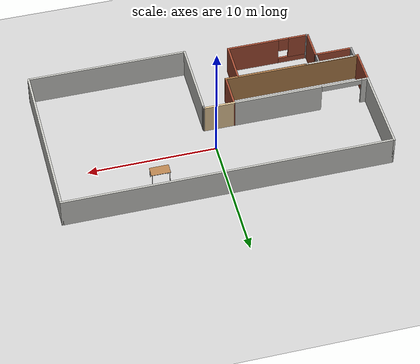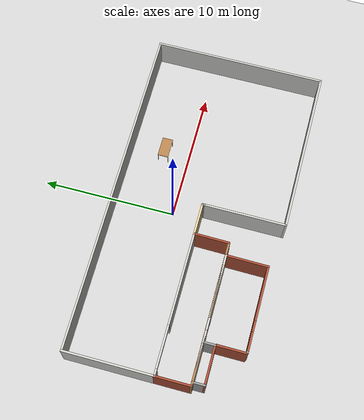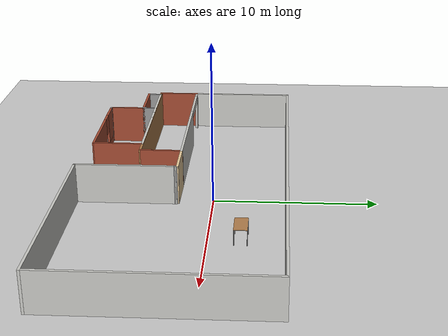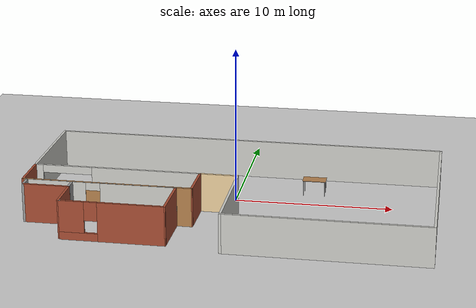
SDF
<sdf version="1.7">
 <world name="default">
  <light name="sun" type="directional">
   <pose>0 0 10 0 -0 0</pose>
   <diffuse>0.8 0.8 0.8 1</diffuse>
   <specular>0.2 0.2 0.2 1</specular>
   <attenuation>
    <range>1000</range>
    <constant>0.9</constant>
    <linear>0.01</linear>
    <quadratic>0.001</quadratic>
   </attenuation>
   <direction>-0.5 0.1 -0.9</direction>
   <spot><inner_angle>0</inner_angle><outer_angle>0</outer_angle><falloff>0</falloff></spot>
  </light>
  <model name="ground_plane">
   <static>1</static>
   <link name="link">
    <collision name="collision">
     <geometry><plane><normal>0 0 1</normal><size>100 100</size></plane></geometry>
     <surface>
      <contact><collide_bitmask>65535</collide_bitmask></contact>
      <friction><ode><mu>100</mu><mu2>50</mu2></ode></friction>
     </surface>
    </collision>
    <visual name="visual">
     <cast_shadows>0</cast_shadows>
     <geometry><plane><normal>0 0 1</normal><size>100 100</size></plane></geometry>
     <material>
      <script><uri>file://media/materials/scripts/gazebo.material</uri><name>Gazebo/Grey</name></script>
     </material>
    </visual>
   </link>
  </model>
  <gravity>0 0 -9.8</gravity>
  <magnetic_field>6e-06 2.3e-05 -4.2e-05</magnetic_field>
  <atmosphere type="adiabatic"/>
  <physics type="ode">
   <max_step_size>0.001</max_step_size>
   <real_time_factor>1</real_time_factor>
   <real_time_update_rate>1000</real_time_update_rate>
  </physics>
  <scene><ambient>0.4 0.4 0.4 1</ambient><background>0.7 0.7 0.7 1</background><shadows>1</shadows></scene>
  <spherical_coordinates>
   <surface_model>EARTH_WGS84</surface_model>
   <latitude_deg>0</latitude_deg>
   <longitude_deg>0</longitude_deg>
   <elevation>0</elevation>
   <heading_deg>0</heading_deg>
  </spherical_coordinates>
  <model name="Simple_place">
   <pose>0.126309 -1.9234 0 0 -0 0</pose>
   <link name="Wall_0">
    <collision name="Wall_0_Collision">
     <geometry><box><size>7.02936 0.15 2.5</size></box></geometry>
     <pose>0 0 1.25 0 -0 0</pose>
    </collision>
    <visual name="Wall_0_Visual">
     <pose>0 0 1.25 0 -0 0</pose>
     <geometry><box><size>7.02936 0.15 2.5</size></box></geometry>
     <material>
      <script><uri>file://media/materials/scripts/gazebo.material</uri><name>Gazebo/CeilingTiled</name></script>
      <ambient>0.921569 0.807843 0.615686 1</ambient>
     </material>
     <meta><layer>0</layer></meta>
    </visual>
    <pose>-5.48532 -0.178442 0 0 -0 -0.001001</pose>
   </link>
   <link name="Wall_1">
    <collision name="Wall_1_Collision">
     <geometry><box><size>2.74328 0.15 2.5</size></box></geometry>
     <pose>0 0 1.25 0 -0 0</pose>
    </collision>
    <visual name="Wall_1_Visual">
     <pose>0 0 1.25 0 -0 0</pose>
     <geometry><box><size>2.74328 0.15 2.5</size></box></geometry>
     <material>
      <script><uri>file://media/materials/scripts/gazebo.material</uri><name>Gazebo/Bricks</name></script>
      <ambient>1 1 1 1</ambient>
     </material>
     <meta><layer>0</layer></meta>
    </visual>
    <pose>-2.06032 -1.47844 0 0 -0 -1.58212</pose>
   </link>
   <link name="Wall_10">
    <collision name="Wall_10_Collision">
     <geometry><box><size>3.26527 0.15 2.5</size></box></geometry>
     <pose>0 0 1.25 0 -0 0</pose>
    </collision>
    <visual name="Wall_10_Visual">
     <pose>0 0 1.25 0 -0 0</pose>
     <geometry><box><size>3.26527 0.15 2.5</size></box></geometry>
     <material>
      <script><uri>file://media/materials/scripts/gazebo.material</uri><name>Gazebo/Bricks</name></script>
      <ambient>1 1 1 1</ambient>
     </material>
     <meta><layer>0</layer></meta>
    </visual>
    <pose>-3.06012 -4.35256 0 0 -0 -1.58051</pose>
   </link>
   <link name="Wall_11">
    <pose>-6.25025 -5.91012 0 0 -0 3.14159</pose>
    <visual name="Wall_11_Visual_0">
     <pose>-1.17761 0 1.25 0 -0 0</pose>
     <geometry><box><size>4.14478 0.15 2.5</size></box></geometry>
     <material>
      <script><uri>file://media/materials/scripts/gazebo.material</uri><name>Gazebo/Bricks</name></script>
      <ambient>0.760784 0.662745 0.627451 1</ambient>
     </material>
     <meta><layer>0</layer></meta>
    </visual>
    <collision name="Wall_11_Collision_0">
     <geometry><box><size>4.14478 0.15 2.5</size></box></geometry>
     <pose>-1.17761 0 1.25 0 -0 0</pose>
    </collision>
    <visual name="Wall_11_Visual_1">
     <pose>2.07239 0 0.25 0 -0 0</pose>
     <geometry><box><size>2.35521 0.15 0.5</size></box></geometry>
     <material>
      <script><uri>file://media/materials/scripts/gazebo.material</uri><name>Gazebo/Bricks</name></script>
      <ambient>0.760784 0.662745 0.627451 1</ambient>
     </material>
     <meta><layer>0</layer></meta>
    </visual>
    <collision name="Wall_11_Collision_1">
     <geometry><box><size>2.35521 0.15 0.5</size></box></geometry>
     <pose>2.07239 0 0.25 0 -0 0</pose>
    </collision>
    <visual name="Wall_11_Visual_2">
     <pose>2.47239 0 1.5 0 -0 0</pose>
     <geometry><box><size>1.55522 0.15 2</size></box></geometry>
     <material>
      <script><uri>file://media/materials/scripts/gazebo.material</uri><name>Gazebo/Bricks</name></script>
      <ambient>0.760784 0.662745 0.627451 1</ambient>
     </material>
     <meta><layer>0</layer></meta>
    </visual>
    <collision name="Wall_11_Collision_2">
     <geometry><box><size>1.55522 0.15 2</size></box></geometry>
     <pose>2.47239 0 1.5 0 -0 0</pose>
    </collision>
    <visual name="Wall_11_Visual_3">
     <pose>1.29479 0 1.9 0 -0 0</pose>
     <geometry><box><size>0.8 0.15 1.2</size></box></geometry>
     <material>
      <script><uri>file://media/materials/scripts/gazebo.material</uri><name>Gazebo/Bricks</name></script>
      <ambient>0.760784 0.662745 0.627451 1</ambient>
     </material>
     <meta><layer>0</layer></meta>
    </visual>
    <collision name="Wall_11_Collision_3">
     <geometry><box><size>0.8 0.15 1.2</size></box></geometry>
     <pose>1.29479 0 1.9 0 -0 0</pose>
    </collision>
   </link>
   <link name="Wall_12">
    <collision name="Wall_12_Collision">
     <geometry><box><size>0.15 0.15 2.5</size></box></geometry>
     <pose>0 0 1.25 0 -0 0</pose>
    </collision>
    <visual name="Wall_12_Visual">
     <pose>0 0 1.25 0 -0 0</pose>
     <geometry><box><size>0.15 0.15 2.5</size></box></geometry>
     <material>
      <script><uri>file://media/materials/scripts/gazebo.material</uri><name>Gazebo/Grey</name></script>
      <ambient>1 1 1 1</ambient>
     </material>
     <meta><layer>0</layer></meta>
    </visual>
    <pose>-9.42525 -5.90256 0 0 -0 0</pose>
   </link>
   <link name="Wall_14">
    <collision name="Wall_14_Collision">
     <geometry><box><size>2.24245 0.15 2.5</size></box></geometry>
     <pose>0 0 1.25 0 -0 0</pose>
    </collision>
    <visual name="Wall_14_Visual">
     <pose>0 0 1.25 0 -0 0</pose>
     <geometry><box><size>2.24245 0.15 2.5</size></box></geometry>
     <material>
      <script><uri>file://media/materials/scripts/gazebo.material</uri><name>Gazebo/Bricks</name></script>
      <ambient>1 1 1 1</ambient>
     </material>
     <meta><layer>0</layer></meta>
    </visual>
    <pose>-9.51765 -4.80524 0 0 -0 1.56718</pose>
   </link>
   <link name="Wall_16">
    <collision name="Wall_16_Collision">
     <geometry><box><size>6.75 0.15 2.5</size></box></geometry>
     <pose>0 0 1.25 0 -0 0</pose>
    </collision>
    <visual name="Wall_16_Visual">
     <pose>0 0 1.25 0 -0 0</pose>
     <geometry><box><size>6.75 0.15 2.5</size></box></geometry>
     <material>
      <script><uri>file://media/materials/scripts/gazebo.material</uri><name>Gazebo/CeilingTiled</name></script>
      <ambient>0.921569 0.807843 0.615686 1</ambient>
     </material>
     <meta><layer>0</layer></meta>
    </visual>
    <pose>-12.675 3.125 0 0 -0 1.5708</pose>
   </link>
   <link name="Wall_17">
    <collision name="Wall_17_Collision">
     <geometry><box><size>25.5 0.15 2.5</size></box></geometry>
     <pose>0 0 1.25 0 -0 0</pose>
    </collision>
    <visual name="Wall_17_Visual">
     <pose>0 0 1.25 0 -0 0</pose>
     <geometry><box><size>25.5 0.15 2.5</size></box></geometry>
     <material>
      <script><uri>file://media/materials/scripts/gazebo.material</uri><name>Gazebo/CeilingTiled</name></script>
      <ambient>0.921569 0.807843 0.615686 1</ambient>
     </material>
     <meta><layer>0</layer></meta>
    </visual>
    <pose>-0 6.425 0 0 -0 0</pose>
   </link>
   <link name="Wall_18">
    <collision name="Wall_18_Collision">
     <geometry><box><size>13 0.15 2.5</size></box></geometry>
     <pose>0 0 1.25 0 -0 0</pose>
    </collision>
    <visual name="Wall_18_Visual">
     <pose>0 0 1.25 0 -0 0</pose>
     <geometry><box><size>13 0.15 2.5</size></box></geometry>
     <material>
      <script><uri>file://media/materials/scripts/gazebo.material</uri><name>Gazebo/CeilingTiled</name></script>
      <ambient>0.921569 0.807843 0.615686 1</ambient>
     </material>
     <meta><layer>0</layer></meta>
    </visual>
    <pose>12.675 0 0 0 -0 -1.5708</pose>
   </link>
   <link name="Wall_19">
    <collision name="Wall_19_Collision">
     <geometry><box><size>12.5 0.15 2.5</size></box></geometry>
     <pose>0 0 1.25 0 -0 0</pose>
    </collision>
    <visual name="Wall_19_Visual">
     <pose>0 0 1.25 0 -0 0</pose>
     <geometry><box><size>12.5 0.15 2.5</size></box></geometry>
     <material>
      <script><uri>file://media/materials/scripts/gazebo.material</uri><name>Gazebo/CeilingTiled</name></script>
      <ambient>0.921569 0.807843 0.615686 1</ambient>
     </material>
     <meta><layer>0</layer></meta>
    </visual>
    <pose>6.5 -6.425 0 0 -0 3.14159</pose>
   </link>
   <link name="Wall_2">
    <collision name="Wall_2_Collision">
     <geometry><box><size>10.75 0.15 2.5</size></box></geometry>
     <pose>0 0 1.25 0 -0 0</pose>
    </collision>
    <visual name="Wall_2_Visual">
     <pose>0 0 1.25 0 -0 0</pose>
     <geometry><box><size>10.75 0.15 2.5</size></box></geometry>
     <material>
      <script><uri>file://media/materials/scripts/gazebo.material</uri><name>Gazebo/Wood</name></script>
      <ambient>1 1 1 1</ambient>
     </material>
     <meta><layer>0</layer></meta>
    </visual>
    <pose>-7.375 -2.775 0 0 -0 3.14159</pose>
   </link>
   <link name="Wall_20">
    <collision name="Wall_20_Collision">
     <geometry><box><size>6.25 0.15 2.5</size></box></geometry>
     <pose>0 0 1.25 0 -0 0</pose>
    </collision>
    <visual name="Wall_20_Visual">
     <pose>0 0 1.25 0 -0 0</pose>
     <geometry><box><size>6.25 0.15 2.5</size></box></geometry>
     <material>
      <script><uri>file://media/materials/scripts/gazebo.material</uri><name>Gazebo/CeilingTiled</name></script>
      <ambient>0.921569 0.807843 0.615686 1</ambient>
     </material>
     <meta><layer>0</layer></meta>
    </visual>
    <pose>0.325 -3.375 0 0 -0 1.5708</pose>
   </link>
   <link name="Wall_21">
    <collision name="Wall_21_Collision">
     <geometry><box><size>0.294597 0.15 2.5</size></box></geometry>
     <pose>0 0 1.25 0 -0 0</pose>
    </collision>
    <visual name="Wall_21_Visual">
     <pose>0 0 1.25 0 -0 0</pose>
     <geometry><box><size>0.294597 0.15 2.5</size></box></geometry>
     <material>
      <script><uri>file://media/materials/scripts/gazebo.material</uri><name>Gazebo/Grey</name></script>
      <ambient>1 1 1 1</ambient>
     </material>
     <meta><layer>0</layer></meta>
    </visual>
    <pose>0.314679 -0.253442 0 0 -0 1.71404</pose>
   </link>
   <link name="Wall_22">
    <collision name="Wall_22_Collision">
     <geometry><box><size>2.5 0.15 2.5</size></box></geometry>
     <pose>0 0 1.25 0 -0 0</pose>
    </collision>
    <visual name="Wall_22_Visual">
     <pose>0 0 1.25 0 -0 0</pose>
     <geometry><box><size>2.5 0.15 2.5</size></box></geometry>
     <material>
      <script><uri>file://media/materials/scripts/gazebo.material</uri><name>Gazebo/Grey</name></script>
      <ambient>0.921569 0.807843 0.615686 1</ambient>
     </material>
     <meta><layer>0</layer></meta>
    </visual>
    <pose>-0.870642 -0.181883 0 0 -0 3.14159</pose>
   </link>
   <link name="Wall_3">
    <collision name="Wall_3_Collision">
     <geometry><box><size>2.75 0.15 2.5</size></box></geometry>
     <pose>0 0 1.25 0 -0 0</pose>
    </collision>
    <visual name="Wall_3_Visual">
     <pose>0 0 1.25 0 -0 0</pose>
     <geometry><box><size>2.75 0.15 2.5</size></box></geometry>
     <material>
      <script><uri>file://media/materials/scripts/gazebo.material</uri><name>Gazebo/Bricks</name></script>
      <ambient>1 1 1 1</ambient>
     </material>
     <meta><layer>0</layer></meta>
    </visual>
    <pose>-12.675 -1.475 0 0 -0 1.5708</pose>
   </link>
   <link name="Wall_4">
    <pose>-10.875 -0.175 0 0 -0 0</pose>
    <visual name="Wall_4_Visual_0">
     <pose>-1.58512 0 1.25 0 -0 0</pose>
     <geometry><box><size>0.579762 0.15 2.5</size></box></geometry>
     <material>
      <script><uri>file://media/materials/scripts/gazebo.material</uri><name>Gazebo/CeilingTiled</name></script>
      <ambient>0.921569 0.807843 0.615686 1</ambient>
     </material>
     <meta><layer>0</layer></meta>
    </visual>
    <collision name="Wall_4_Collision_0">
     <geometry><box><size>0.579762 0.15 2.5</size></box></geometry>
     <pose>-1.58512 0 1.25 0 -0 0</pose>
    </collision>
    <visual name="Wall_4_Visual_1">
     <pose>0.289881 0 2.25 0 -0 0</pose>
     <geometry><box><size>3.17024 0.15 0.5</size></box></geometry>
     <material>
      <script><uri>file://media/materials/scripts/gazebo.material</uri><name>Gazebo/CeilingTiled</name></script>
      <ambient>0.921569 0.807843 0.615686 1</ambient>
     </material>
     <meta><layer>0</layer></meta>
    </visual>
    <collision name="Wall_4_Collision_1">
     <geometry><box><size>3.17024 0.15 0.5</size></box></geometry>
     <pose>0.289881 0 2.25 0 -0 0</pose>
    </collision>
   </link>
   <link name="Wall_6">
    <collision name="Wall_6_Collision">
     <geometry><box><size>1 0.15 2.5</size></box></geometry>
     <pose>0 0 1.25 0 -0 0</pose>
    </collision>
    <visual name="Wall_6_Visual">
     <pose>0 0 1.25 0 -0 0</pose>
     <geometry><box><size>1 0.15 2.5</size></box></geometry>
     <material>
      <script><uri>file://media/materials/scripts/gazebo.material</uri><name>Gazebo/Grey</name></script>
      <ambient>1 1 1 1</ambient>
     </material>
     <meta><layer>0</layer></meta>
    </visual>
    <pose>-9.545 -3.22 0 0 -0 -1.5708</pose>
   </link>
   <link name="Wall_7">
    <collision name="Wall_7_Collision">
     <geometry><box><size>3 0.15 2.5</size></box></geometry>
     <pose>0 0 1.25 0 -0 0</pose>
    </collision>
    <visual name="Wall_7_Visual">
     <pose>0 0 1.25 0 -0 0</pose>
     <geometry><box><size>3 0.15 2.5</size></box></geometry>
     <material>
      <script><uri>file://media/materials/scripts/gazebo.material</uri><name>Gazebo/Bricks</name></script>
      <ambient>1 1 1 1</ambient>
     </material>
     <meta><layer>0</layer></meta>
    </visual>
    <pose>-10.97 -3.645 0 0 -0 3.14159</pose>
   </link>
   <link name="Wall_8">
    <collision name="Wall_8_Collision">
     <geometry><box><size>1 0.15 2.5</size></box></geometry>
     <pose>0 0 1.25 0 -0 0</pose>
    </collision>
    <visual name="Wall_8_Visual">
     <pose>0 0 1.25 0 -0 0</pose>
     <geometry><box><size>1 0.15 2.5</size></box></geometry>
     <material>
      <script><uri>file://media/materials/scripts/gazebo.material</uri><name>Gazebo/Grey</name></script>
      <ambient>1 1 1 1</ambient>
     </material>
     <meta><layer>0</layer></meta>
    </visual>
    <pose>-12.395 -3.22 0 0 -0 1.5708</pose>
   </link>
   <link name="Wall_9">
    <pose>-7.72 -2.795 0 0 -0 0</pose>
    <visual name="Wall_9_Visual_0">
     <pose>-2.84883 0 1.25 0 -0 0</pose>
     <geometry><box><size>3.80234 0.15 2.5</size></box></geometry>
     <material>
      <script><uri>file://media/materials/scripts/gazebo.material</uri><name>Gazebo/CeilingTiled</name></script>
      <ambient>1 1 1 1</ambient>
     </material>
     <meta><layer>0</layer></meta>
    </visual>
    <collision name="Wall_9_Collision_0">
     <geometry><box><size>3.80234 0.15 2.5</size></box></geometry>
     <pose>-2.84883 0 1.25 0 -0 0</pose>
    </collision>
    <visual name="Wall_9_Visual_1">
     <pose>2.35117 0 1.25 0 -0 0</pose>
     <geometry><box><size>4.79766 0.15 2.5</size></box></geometry>
     <material>
      <script><uri>file://media/materials/scripts/gazebo.material</uri><name>Gazebo/CeilingTiled</name></script>
      <ambient>1 1 1 1</ambient>
     </material>
     <meta><layer>0</layer></meta>
    </visual>
    <collision name="Wall_9_Collision_1">
     <geometry><box><size>4.79766 0.15 2.5</size></box></geometry>
     <pose>2.35117 0 1.25 0 -0 0</pose>
    </collision>
    <visual name="Wall_9_Visual_2">
     <pose>-0.497656 0 2.25 0 -0 0</pose>
     <geometry><box><size>0.9 0.15 0.5</size></box></geometry>
     <material>
      <script><uri>file://media/materials/scripts/gazebo.material</uri><name>Gazebo/CeilingTiled</name></script>
      <ambient>1 1 1 1</ambient>
     </material>
     <meta><layer>0</layer></meta>
    </visual>
    <collision name="Wall_9_Collision_2">
     <geometry><box><size>0.9 0.15 0.5</size></box></geometry>
     <pose>-0.497656 0 2.25 0 -0 0</pose>
    </collision>
   </link>
   <static>1</static>
  </model>
  <model name="table">
   <static>1</static>
   <link name="link">
    <collision name="surface">
     <pose>0 0 1 0 -0 0</pose>
     <geometry><box><size>1.5 0.8 0.03</size></box></geometry>
     <surface><friction><ode><mu>0.6</mu><mu2>0.6</mu2></ode></friction></surface>
    </collision>
    <visual name="visual1">
     <pose>0 0 1 0 -0 0</pose>
     <geometry><box><size>1.5 0.8 0.03</size></box></geometry>
     <material>
      <script><uri>file://media/materials/scripts/gazebo.material</uri><name>Gazebo/Wood</name></script>
     </material>
    </visual>
    <collision name="front_left_leg">
     <pose>0.68 0.38 0.5 0 -0 0</pose>
     <geometry><cylinder><radius>0.02</radius><length>1</length></cylinder></geometry>
    </collision>
    <visual name="front_left_leg">
     <pose>0.68 0.38 0.5 0 -0 0</pose>
     <geometry><cylinder><radius>0.02</radius><length>1</length></cylinder></geometry>
     <material>
      <script><uri>file://media/materials/scripts/gazebo.material</uri><name>Gazebo/Grey</name></script>
     </material>
    </visual>
    <collision name="front_right_leg">
     <pose>0.68 -0.38 0.5 0 -0 0</pose>
     <geometry><cylinder><radius>0.02</radius><length>1</length></cylinder></geometry>
    </collision>
    <visual name="front_right_leg">
     <pose>0.68 -0.38 0.5 0 -0 0</pose>
     <geometry><cylinder><radius>0.02</radius><length>1</length></cylinder></geometry>
     <material>
      <script><uri>file://media/materials/scripts/gazebo.material</uri><name>Gazebo/Grey</name></script>
     </material>
    </visual>
    <collision name="back_right_leg">
     <pose>-0.68 -0.38 0.5 0 -0 0</pose>
     <geometry><cylinder><radius>0.02</radius><length>1</length></cylinder></geometry>
    </collision>
    <visual name="back_right_leg">
     <pose>-0.68 -0.38 0.5 0 -0 0</pose>
     <geometry><cylinder><radius>0.02</radius><length>1</length></cylinder></geometry>
     <material>
      <script><uri>file://media/materials/scripts/gazebo.material</uri><name>Gazebo/Grey</name></script>
     </material>
    </visual>
    <collision name="back_left_leg">
     <pose>-0.68 0.38 0.5 0 -0 0</pose>
     <geometry><cylinder><radius>0.02</radius><length>1</length></cylinder></geometry>
    </collision>
    <visual name="back_left_leg">
     <pose>-0.68 0.38 0.5 0 -0 0</pose>
     <geometry><cylinder><radius>0.02</radius><length>1</length></cylinder></geometry>
     <material>
      <script><uri>file://media/materials/scripts/gazebo.material</uri><name>Gazebo/Grey</name></script>
     </material>
    </visual>
   </link>
   <pose>4.8514 1.92776 0 0 -0 0</pose>
  </model>
 </world>
</sdf>
